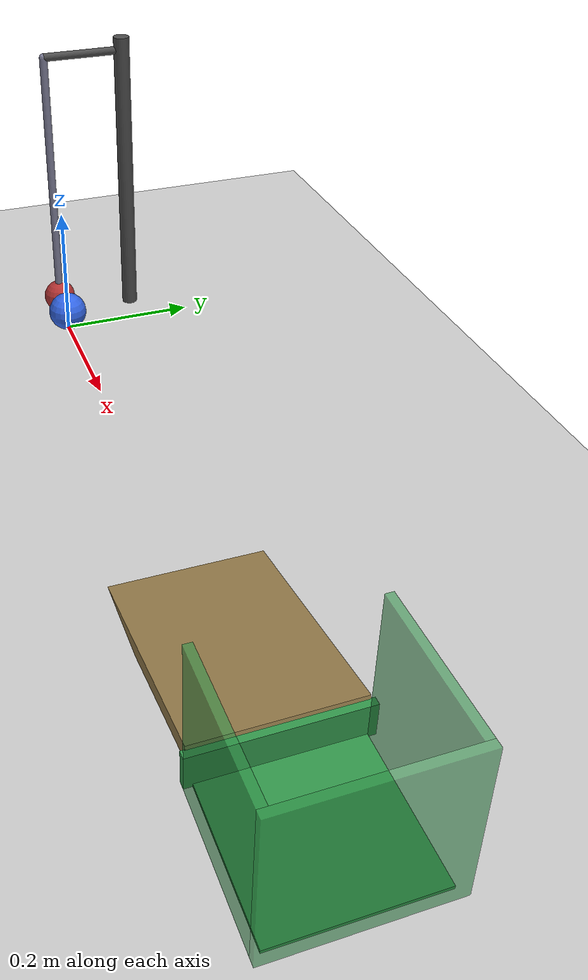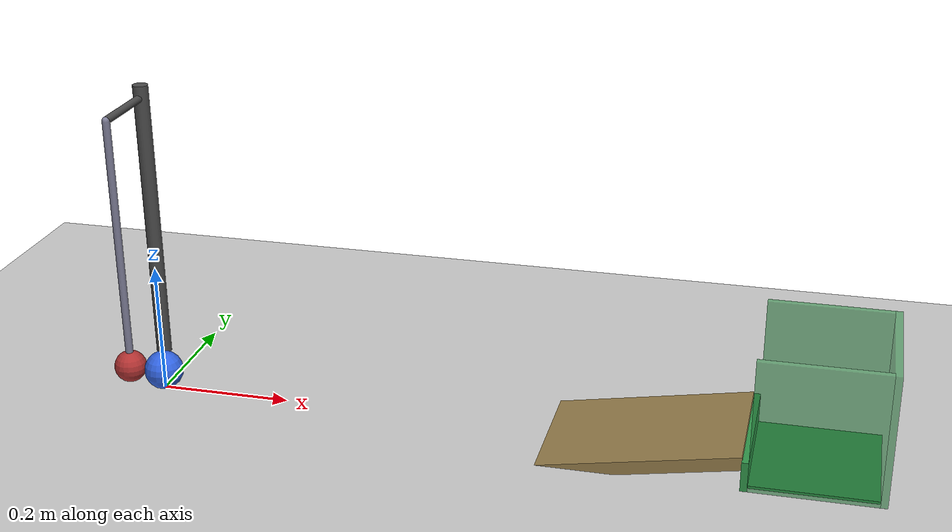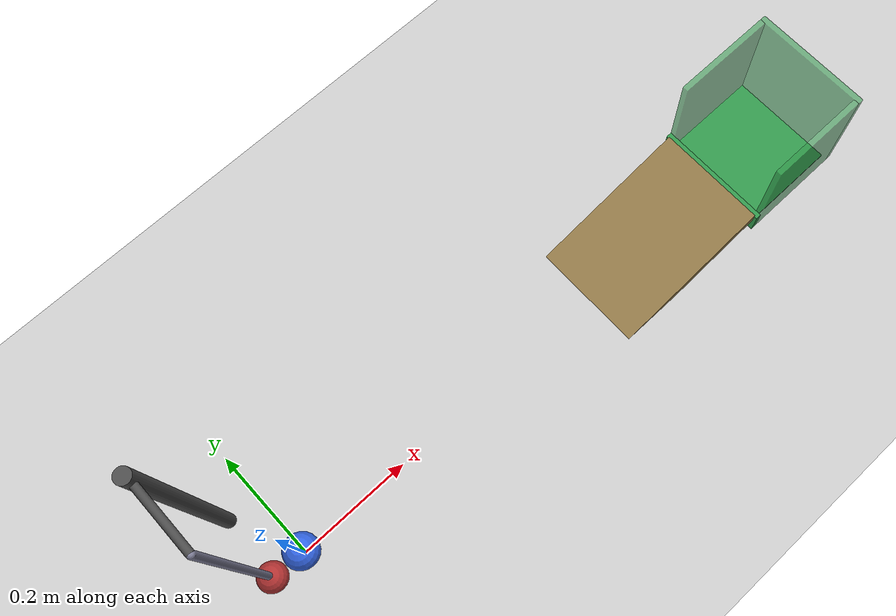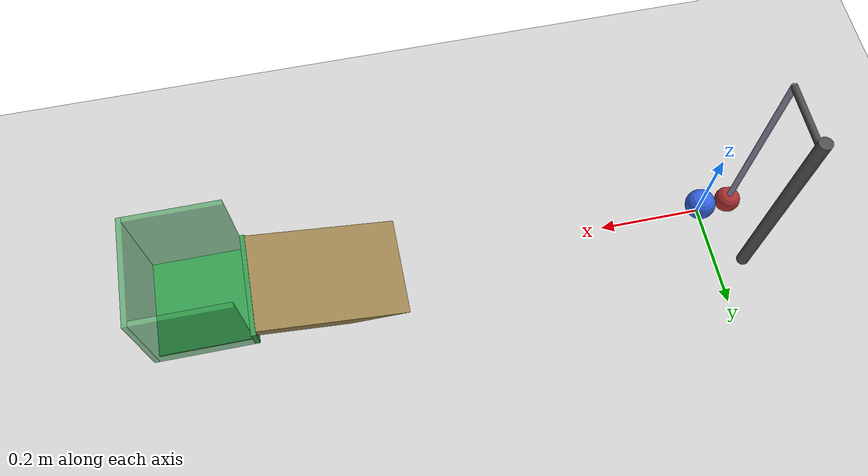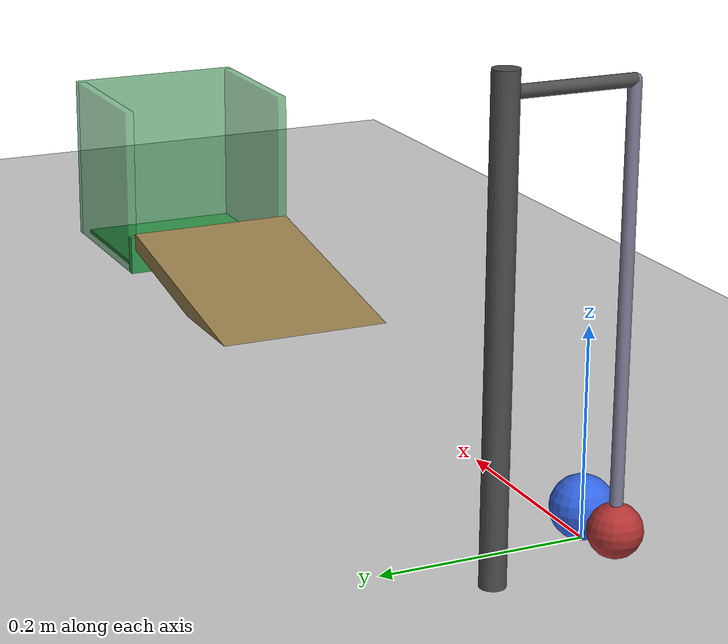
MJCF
<mujoco model="pendulum_ball_cup">
  <compiler angle="degree"/>
  <option timestep="0.002" gravity="0 0 -9.81"/>

  <visual>
    <global offwidth="1280" offheight="720"/>
  </visual>

  <worldbody>
    <light name="sun" pos="0.5 -1 2" dir="0 0.4 -1" diffuse="0.8 0.8 0.8"/>
    <geom name="floor" type="plane" pos="0.5 0 0" size="3 3 0.1" rgba="0.8 0.8 0.8 1"/>

    <!-- decorative support frame (non-colliding) -->
    <geom name="frame_post" type="cylinder" fromto="-0.056 0.12 0 -0.056 0.12 0.45" size="0.012" contype="0" conaffinity="0" rgba="0.3 0.3 0.3 1"/>
    <geom name="frame_axle" type="cylinder" fromto="-0.056 0 0.43 -0.056 0.12 0.43" size="0.006" contype="0" conaffinity="0" rgba="0.3 0.3 0.3 1"/>

    <!-- pendulum: hinge 0.4 m above the bob; bob just touches the ball at the bottom of its swing -->
    <body name="pendulum" pos="-0.056 0 0.43">
      <joint name="pendulum_hinge" type="hinge" axis="0 1 0" pos="0 0 0" damping="0"/>
      <geom name="pendulum_rod" type="capsule" fromto="0 0 0 0 0 -0.375" size="0.006" mass="0.04" rgba="0.5 0.5 0.6 1"/>
      <geom name="pendulum_bob" type="sphere" pos="0 0 -0.4" size="0.025" mass="0.5" rgba="0.7 0.2 0.2 1"/>
    </body>

    <!-- ball resting on the floor at the origin -->
    <body name="ball" pos="0 0 0.03">
      <freejoint name="ball_free"/>
      <geom name="ball" type="sphere" size="0.03" mass="0.1" rgba="0.2 0.4 0.9 1"/>
    </body>

    <!-- 10 degree ramp leading up to the cup lip: surface from x=0.6165 (z=0) to x=0.9 (z=0.05) -->
    <body name="ramp" pos="0.75402 0 0.01410" euler="0 -10 0">
      <geom name="ramp_slab" type="box" size="0.15 0.1 0.01" rgba="0.6 0.5 0.3 1"/>
    </body>

    <!-- cup centred 1 m from the ball start: inner region x 0.91..1.09, y -0.095..0.095 -->
    <body name="cup" pos="1.0 0 0">
      <geom name="cup_base" type="box" pos="0 0 0.002" size="0.09 0.095 0.002" rgba="0.2 0.6 0.3 1"/>
      <geom name="cup_front" type="box" pos="-0.095 0 0.0225" size="0.005 0.105 0.0225" rgba="0.2 0.6 0.3 1"/>
      <geom name="cup_back" type="box" pos="0.095 0 0.1" size="0.005 0.105 0.1" rgba="0.2 0.6 0.3 0.6"/>
      <geom name="cup_left" type="box" pos="0 0.1 0.1" size="0.09 0.005 0.1" rgba="0.2 0.6 0.3 0.6"/>
      <geom name="cup_right" type="box" pos="0 -0.1 0.1" size="0.09 0.005 0.1" rgba="0.2 0.6 0.3 0.6"/>
    </body>
  </worldbody>

  <keyframe>
    <!-- pendulum raised 75 degrees (1.309 rad) toward -x, released from rest; ball at rest on floor -->
    <key name="start" qpos="1.309  0 0 0.03 1 0 0 0" qvel="0  0 0 0 0 0 0"/>
  </keyframe>
</mujoco>
